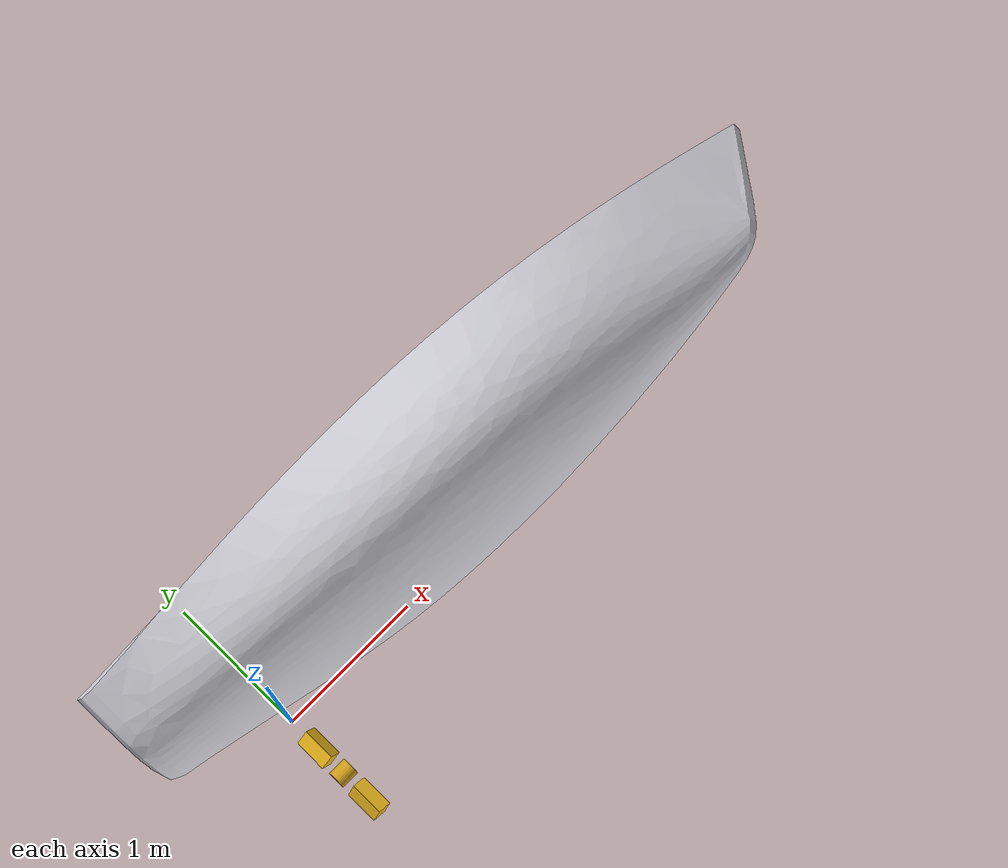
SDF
<?xml version="1.0" ?>
<sdf version="1.6">
  <world name="world">
    <model name="toy_boat">
      <pose>0 0 0 0 0 0</pose>

      <!-- ===================== HULL (base link) ====================== -->
      <link name="base_link">
        <pose>0 0 0 0 0 0</pose>
        <inertial>
          <pose>2.2206 0.3664 0 0 0 0</pose>
          <mass>1400.0</mass>
          <inertia>
            <ixx>677.0</ixx>  <ixy>0</ixy> <ixz>0</ixz>
            <iyy>4772.0</iyy> <iyz>0</iyz>
            <izz>4305.0</izz>
          </inertia>
        </inertial>
        <collision name="hull_collision">
          <pose>0 0 0 0 0 0</pose>
          <geometry><mesh><uri>../sdfs/DSYHS/OBJ/hull.obj</uri><scale>0.0026970 0.0026970 0.0026970</scale></mesh></geometry>
        </collision>
        <visual name="hull_visual">
          <pose>0 0 0 0 0 0</pose>
          <geometry><mesh><uri>../sdfs/DSYHS/OBJ/hull.obj</uri><scale>0.0026970 0.0026970 0.0026970</scale></mesh></geometry>
          <material><ambient>0.85 0.85 0.88 1</ambient><diffuse>0.85 0.85 0.88 1</diffuse></material>
        </visual>
      </link>

      <!-- ===================== KEEL (ballast) ======================== -->
      <link name="keel_link">
        <pose>0 0 0 0 0 0</pose>
        <inertial>
          <!-- 2000 kg at Y=-0.80: extreme keel for maximum righting moment.
               COM → Y≈-0.32, world Z≈-0.06 (0.46 m below waterline). -->
          <pose>1.5 -0.80 0 0 0 0</pose>
          <mass>2000.0</mass>
          <inertia>
            <ixx>62.7</ixx>  <ixy>0</ixy> <ixz>0</ixz>
            <iyy>331.1</iyy>  <iyz>0</iyz>
            <izz>384.4</izz>
          </inertia>
        </inertial>
        <collision name="keel_collision">
          <pose>0 0 0 0 0 0</pose>
          <geometry><mesh><uri>../sdfs/DSYHS/OBJ/keel.obj</uri><scale>0.0026970 0.0026970 0.0026970</scale></mesh></geometry>
        </collision>
        <visual name="keel_visual">
          <pose>0 0 0 0 0 0</pose>
          <geometry><mesh><uri>../sdfs/DSYHS/OBJ/keel.obj</uri><scale>0.0026970 0.0026970 0.0026970</scale></mesh></geometry>
          <material><ambient>0.6 0.6 0.62 1</ambient><diffuse>0.6 0.6 0.62 1</diffuse></material>
        </visual>
      </link>

      <!-- ===================== RUDDER ================================ -->
      <link name="rudder_link">
        <pose>0 0 0 0 0 0</pose>
        <inertial>
          <pose>-0.2113 0.0233 0 0 0 0</pose>
          <mass>20.0</mass>
          <inertia>
            <ixx>0.86</ixx>  <ixy>0</ixy> <ixz>0</ixz>
            <iyy>0.20</iyy>  <iyz>0</iyz>
            <izz>1.06</izz>
          </inertia>
        </inertial>
        <collision name="rudder_collision">
          <pose>0 0 0 0 0 0</pose>
          <geometry><mesh><uri>../sdfs/DSYHS/OBJ/rudder.obj</uri><scale>0.0026970 0.0026970 0.0026970</scale></mesh></geometry>
        </collision>
        <visual name="rudder_visual">
          <pose>0 0 0 0 0 0</pose>
          <geometry><mesh><uri>../sdfs/DSYHS/OBJ/rudder.obj</uri><scale>0.0026970 0.0026970 0.0026970</scale></mesh></geometry>
          <material><ambient>0.7 0.2 0.15 1</ambient><diffuse>0.7 0.2 0.15 1</diffuse></material>
        </visual>
      </link>

      <!-- Rigid welds attaching keel + rudder to the hull -->
      <joint name="joint_keel" type="fixed">
        <parent>base_link</parent><child>keel_link</child><pose>0 0 0 0 0 0</pose>
      </joint>
      <joint name="joint_rudder" type="fixed">
        <parent>base_link</parent><child>rudder_link</child><pose>0 0 0 0 0 0</pose>
      </joint>

      <link name="propeller_hub">
        <pose>0.0 -0.45 0.0 0 0 0</pose>
        <inertial><pose>0 0 0 0 0 0</pose><mass>13.572</mass>
          <inertia><ixx>0.02443</ixx><ixy>0</ixy><ixz>0</ixz><iyy>0.02851</iyy><iyz>0</iyz><izz>0.02851</izz></inertia></inertial>
        <collision name="propeller_hub_collision"><pose>0 0 0 0 1.5707963267948966 0</pose>
          <geometry><cylinder><radius>0.06</radius><length>0.12</length></cylinder></geometry></collision>
        <visual name="propeller_hub_visual"><pose>0 0 0 0 1.5707963267948966 0</pose>
          <geometry><cylinder><radius>0.06</radius><length>0.12</length></cylinder></geometry>
          <material><ambient>0.8 0.6 0.1 1</ambient><diffuse>0.8 0.6 0.1 1</diffuse><specular>0.4 0.4 0.4 1</specular></material></visual>
      </link>

      <!-- Blade 0: pointing -Y (down), pitched +0.6 about Y -->
      <link name="blade_0">
        <pose>0.0 -0.67 0.0 0 0.6 0</pose>
        <inertial><pose>0 0 0 0 0 0</pose><mass>10.0</mass>
          <inertia><ixx>0.04865</ixx><ixy>0</ixy><ixz>0</ixz><iyy>0.01665</iyy><iyz>0</iyz><izz>0.04865</izz></inertia></inertial>
        <collision name="blade_0_collision"><pose>0 0 0 0 0 0</pose>
          <geometry><box><size>0.10 0.22 0.10</size></box></geometry></collision>
        <visual name="blade_0_visual"><pose>0 0 0 0 0 0</pose>
          <geometry><box><size>0.10 0.22 0.10</size></box></geometry>
          <material><ambient>0.9 0.7 0.1 1</ambient><diffuse>0.9 0.7 0.1 1</diffuse><specular>0.4 0.4 0.4 1</specular></material></visual>
      </link>

      <!-- Blade 1: pointing +Y (up), pitched -0.6 about Y (opposite) -->
      <link name="blade_1">
        <pose>0.0 -0.23 0.0 0 -0.6 0</pose>
        <inertial><pose>0 0 0 0 0 0</pose><mass>10.0</mass>
          <inertia><ixx>0.04865</ixx><ixy>0</ixy><ixz>0</ixz><iyy>0.01665</iyy><iyz>0</iyz><izz>0.04865</izz></inertia></inertial>
        <collision name="blade_1_collision"><pose>0 0 0 0 0 0</pose>
          <geometry><box><size>0.10 0.22 0.10</size></box></geometry></collision>
        <visual name="blade_1_visual"><pose>0 0 0 0 0 0</pose>
          <geometry><box><size>0.10 0.22 0.10</size></box></geometry>
          <material><ambient>0.9 0.7 0.1 1</ambient><diffuse>0.9 0.7 0.1 1</diffuse><specular>0.4 0.4 0.4 1</specular></material></visual>
      </link>

      <joint name="joint_propeller" type="revolute">
        <parent>base_link</parent><child>propeller_hub</child><pose>0 0 0 0 0 0</pose>
        <axis><xyz>1 0 0</xyz><limit><lower>-1e16</lower><upper>1e16</upper></limit></axis>
      </joint>
      <joint name="joint_blade_0" type="fixed"><parent>propeller_hub</parent><child>blade_0</child><pose>0 0 0 0 0 0</pose></joint>
      <joint name="joint_blade_1" type="fixed"><parent>propeller_hub</parent><child>blade_1</child><pose>0 0 0 0 0 0</pose></joint>

    </model>
  </world>
</sdf>
